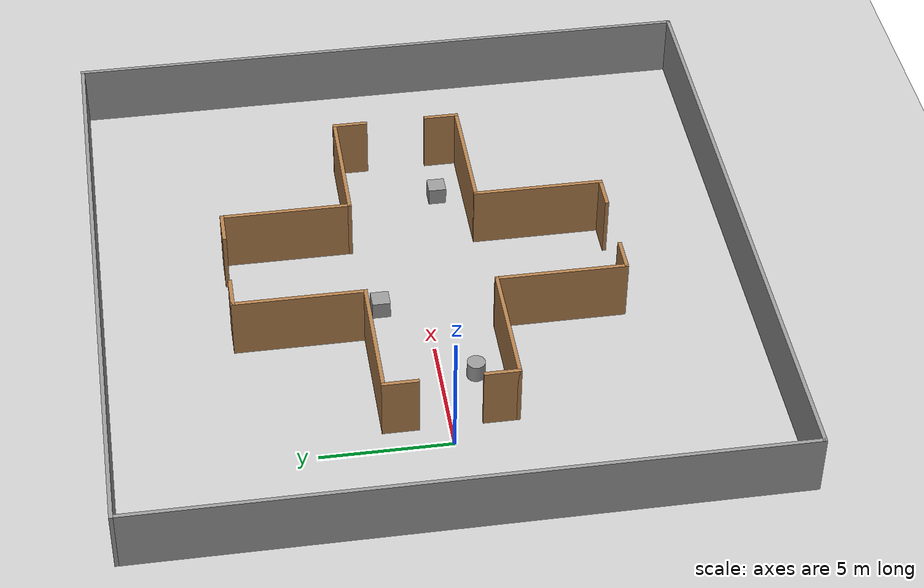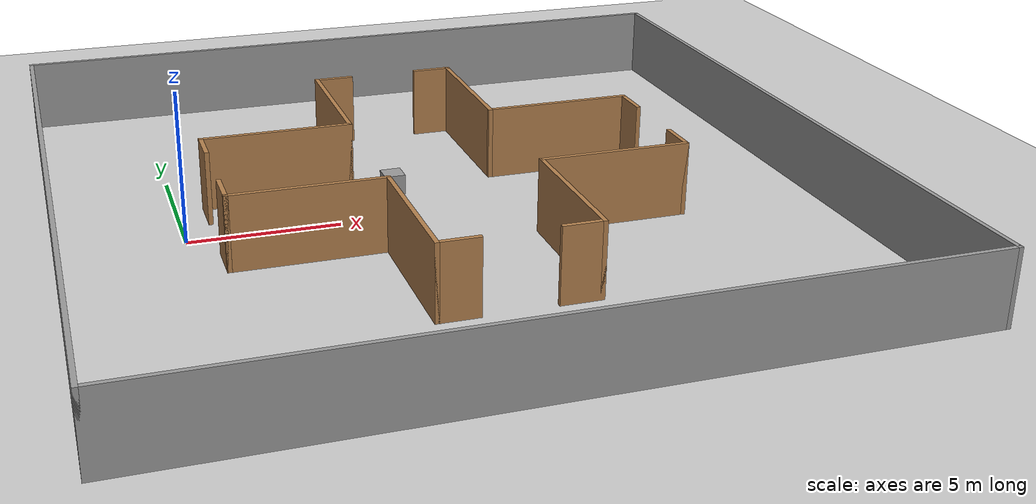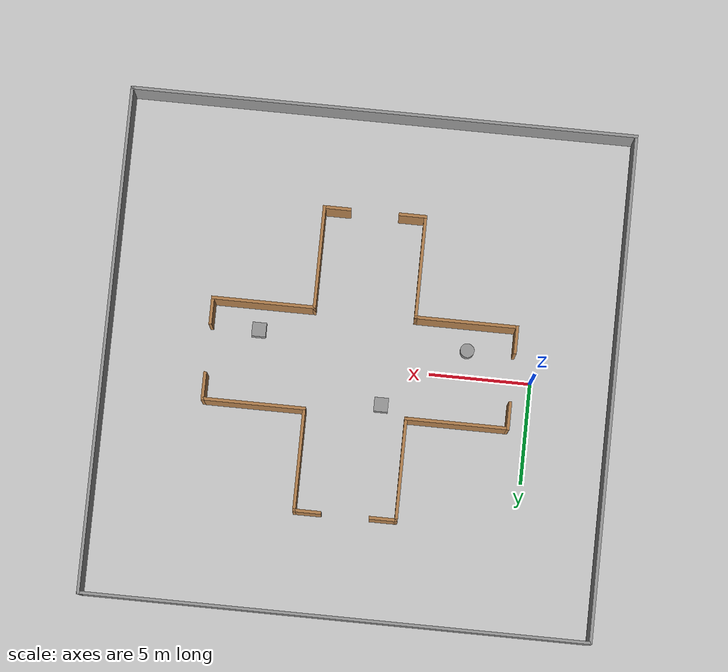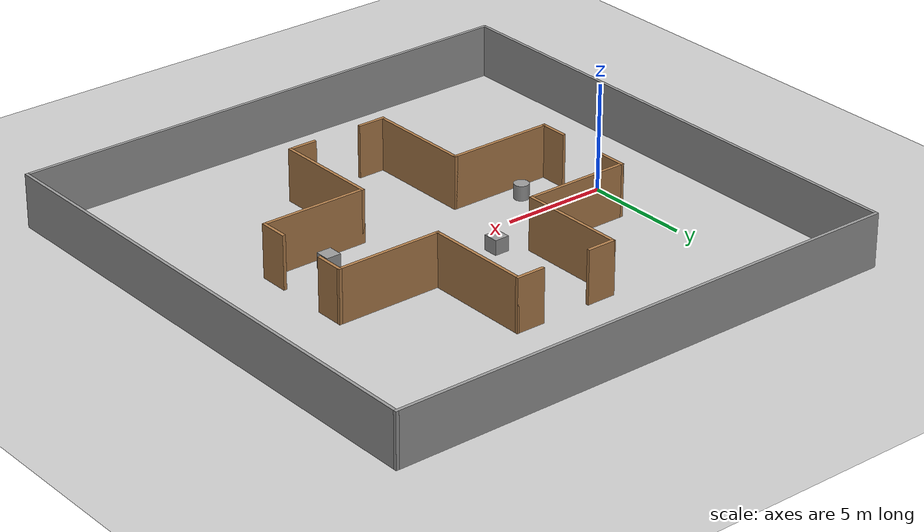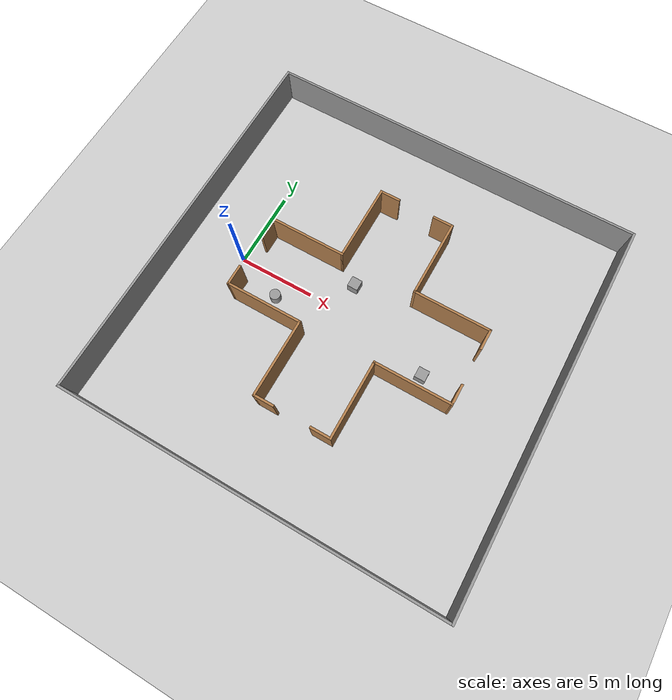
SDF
<sdf version="1.7">
 <world name="default">
  <light name="sun" type="directional">
   <pose>0 0 10 0 -0 0</pose>
   <diffuse>0.8 0.8 0.8 1</diffuse>
   <specular>0.2 0.2 0.2 1</specular>
   <attenuation>
    <range>1000</range>
    <constant>0.9</constant>
    <linear>0.01</linear>
    <quadratic>0.001</quadratic>
   </attenuation>
   <direction>-0.5 0.1 -0.9</direction>
   <spot><inner_angle>0</inner_angle><outer_angle>0</outer_angle><falloff>0</falloff></spot>
  </light>
  <model name="ground_plane">
   <static>1</static>
   <link name="link">
    <collision name="collision">
     <geometry><plane><normal>0 0 1</normal><size>100 100</size></plane></geometry>
     <surface><friction><ode><mu>100</mu><mu2>50</mu2></ode></friction></surface>
    </collision>
    <visual name="visual">
     <cast_shadows>0</cast_shadows>
     <geometry><plane><normal>0 0 1</normal><size>100 100</size></plane></geometry>
     <material>
      <script><uri>file://media/materials/scripts/gazebo.material</uri><name>Gazebo/Grey</name></script>
     </material>
    </visual>
   </link>
  </model>
  <gravity>0 0 -9.8</gravity>
  <magnetic_field>6e-06 2.3e-05 -4.2e-05</magnetic_field>
  <atmosphere type="adiabatic"/>
  <physics type="ode">
   <max_step_size>0.001</max_step_size>
   <real_time_factor>1</real_time_factor>
   <real_time_update_rate>1000</real_time_update_rate>
  </physics>
  <scene><ambient>0.4 0.4 0.4 1</ambient><background>0.7 0.7 0.7 1</background><shadows>1</shadows></scene>
  <spherical_coordinates>
   <surface_model>EARTH_WGS84</surface_model>
   <latitude_deg>0</latitude_deg>
   <longitude_deg>0</longitude_deg>
   <elevation>0</elevation>
   <heading_deg>0</heading_deg>
  </spherical_coordinates>
  <model name="Untitled">
   <pose>8.5 0 0 0 -0 0</pose>
   <link name="Wall_5">
    <collision name="Wall_5_Collision">
     <geometry><box><size>25.15 0.15 2.5</size></box></geometry>
     <pose>0 0 1.25 0 -0 0</pose>
    </collision>
    <visual name="Wall_5_Visual">
     <pose>0 0 1.25 0 -0 0</pose>
     <geometry><box><size>25.15 0.15 2.5</size></box></geometry>
     <material>
      <script><uri>file://media/materials/scripts/gazebo.material</uri><name>Gazebo/Grey</name></script>
      <ambient>1 1 1 1</ambient>
     </material>
     <meta><layer>0</layer></meta>
    </visual>
    <pose>-12.5 0 0 0 -0 -1.5708</pose>
   </link>
   <link name="Wall_6">
    <collision name="Wall_6_Collision">
     <geometry><box><size>25.15 0.15 2.5</size></box></geometry>
     <pose>0 0 1.25 0 -0 0</pose>
    </collision>
    <visual name="Wall_6_Visual">
     <pose>0 0 1.25 0 -0 0</pose>
     <geometry><box><size>25.15 0.15 2.5</size></box></geometry>
     <material>
      <script><uri>file://media/materials/scripts/gazebo.material</uri><name>Gazebo/Grey</name></script>
      <ambient>1 1 1 1</ambient>
     </material>
     <meta><layer>0</layer></meta>
    </visual>
    <pose>0 -12.5 0 0 -0 0</pose>
   </link>
   <link name="Wall_7">
    <collision name="Wall_7_Collision">
     <geometry><box><size>25.15 0.15 2.5</size></box></geometry>
     <pose>0 0 1.25 0 -0 0</pose>
    </collision>
    <visual name="Wall_7_Visual">
     <pose>0 0 1.25 0 -0 0</pose>
     <geometry><box><size>25.15 0.15 2.5</size></box></geometry>
     <material>
      <script><uri>file://media/materials/scripts/gazebo.material</uri><name>Gazebo/Grey</name></script>
      <ambient>1 1 1 1</ambient>
     </material>
     <meta><layer>0</layer></meta>
    </visual>
    <pose>12.5 0 0 0 -0 1.5708</pose>
   </link>
   <link name="Wall_8">
    <collision name="Wall_8_Collision">
     <geometry><box><size>25.15 0.15 2.5</size></box></geometry>
     <pose>0 0 1.25 0 -0 0</pose>
    </collision>
    <visual name="Wall_8_Visual">
     <pose>0 0 1.25 0 -0 0</pose>
     <geometry><box><size>25.15 0.15 2.5</size></box></geometry>
     <material>
      <script><uri>file://media/materials/scripts/gazebo.material</uri><name>Gazebo/Grey</name></script>
      <ambient>1 1 1 1</ambient>
     </material>
     <meta><layer>0</layer></meta>
    </visual>
    <pose>0 12.5 0 0 -0 3.14159</pose>
   </link>
   <static>1</static>
  </model>
  <model name="my_room">
   <pose>8 -0 0 0 -0 0</pose>
   <link name="Wall_0">
    <collision name="Wall_0_Collision">
     <geometry><box><size>1.4 0.15 2.5</size></box></geometry>
     <pose>0 0 1.25 0 -0 0</pose>
    </collision>
    <visual name="Wall_0_Visual">
     <pose>0 0 1.25 0 -0 0</pose>
     <geometry><box><size>1.4 0.15 2.5</size></box></geometry>
     <material>
      <script><uri>file://media/materials/scripts/gazebo.material</uri><name>Gazebo/Wood</name></script>
      <ambient>1 1 1 1</ambient>
     </material>
     <meta><layer>0</layer></meta>
    </visual>
    <pose>-7.0375 1.875 0 0 -0 1.5708</pose>
   </link>
   <link name="Wall_14">
    <collision name="Wall_14_Collision">
     <geometry><box><size>5.15 0.15 2.5</size></box></geometry>
     <pose>0 0 1.25 0 -0 0</pose>
    </collision>
    <visual name="Wall_14_Visual">
     <pose>0 0 1.25 0 -0 0</pose>
     <geometry><box><size>5.15 0.15 2.5</size></box></geometry>
     <material>
      <script><uri>file://media/materials/scripts/gazebo.material</uri><name>Gazebo/Wood</name></script>
      <ambient>1 1 1 1</ambient>
     </material>
     <meta><layer>0</layer></meta>
    </visual>
    <pose>-4.5375 2.5 0 0 -0 0</pose>
   </link>
   <link name="Wall_15">
    <collision name="Wall_15_Collision">
     <geometry><box><size>5.15 0.15 2.5</size></box></geometry>
     <pose>0 0 1.25 0 -0 0</pose>
    </collision>
    <visual name="Wall_15_Visual">
     <pose>0 0 1.25 0 -0 0</pose>
     <geometry><box><size>5.15 0.15 2.5</size></box></geometry>
     <material>
      <script><uri>file://media/materials/scripts/gazebo.material</uri><name>Gazebo/Wood</name></script>
      <ambient>1 1 1 1</ambient>
     </material>
     <meta><layer>0</layer></meta>
    </visual>
    <pose>-2.0375 5 0 0 -0 1.5708</pose>
   </link>
   <link name="Wall_16">
    <collision name="Wall_16_Collision">
     <geometry><box><size>1.4 0.15 2.5</size></box></geometry>
     <pose>0 0 1.25 0 -0 0</pose>
    </collision>
    <visual name="Wall_16_Visual">
     <pose>0 0 1.25 0 -0 0</pose>
     <geometry><box><size>1.4 0.15 2.5</size></box></geometry>
     <material>
      <script><uri>file://media/materials/scripts/gazebo.material</uri><name>Gazebo/Wood</name></script>
      <ambient>1 1 1 1</ambient>
     </material>
     <meta><layer>0</layer></meta>
    </visual>
    <pose>-1.4125 7.5 0 0 -0 0</pose>
   </link>
   <link name="Wall_19">
    <collision name="Wall_19_Collision">
     <geometry><box><size>0.15 0.15 2.5</size></box></geometry>
     <pose>0 0 1.25 0 -0 0</pose>
    </collision>
    <visual name="Wall_19_Visual">
     <pose>0 0 1.25 0 -0 0</pose>
     <geometry><box><size>0.15 0.15 2.5</size></box></geometry>
     <material>
      <script><uri>file://media/materials/scripts/gazebo.material</uri><name>Gazebo/Wood</name></script>
      <ambient>1 1 1 1</ambient>
     </material>
     <meta><layer>0</layer></meta>
    </visual>
    <pose>-7.0375 -2.5 0 0 -0 0</pose>
   </link>
   <link name="Wall_21">
    <collision name="Wall_21_Collision">
     <geometry><box><size>5.15 0.15 2.5</size></box></geometry>
     <pose>0 0 1.25 0 -0 0</pose>
    </collision>
    <visual name="Wall_21_Visual">
     <pose>0 0 1.25 0 -0 0</pose>
     <geometry><box><size>5.15 0.15 2.5</size></box></geometry>
     <material>
      <script><uri>file://media/materials/scripts/gazebo.material</uri><name>Gazebo/Wood</name></script>
      <ambient>1 1 1 1</ambient>
     </material>
     <meta><layer>0</layer></meta>
    </visual>
    <pose>-4.5375 -2.5 0 0 -0 0</pose>
   </link>
   <link name="Wall_22">
    <collision name="Wall_22_Collision">
     <geometry><box><size>5.15 0.15 2.5</size></box></geometry>
     <pose>0 0 1.25 0 -0 0</pose>
    </collision>
    <visual name="Wall_22_Visual">
     <pose>0 0 1.25 0 -0 0</pose>
     <geometry><box><size>5.15 0.15 2.5</size></box></geometry>
     <material>
      <script><uri>file://media/materials/scripts/gazebo.material</uri><name>Gazebo/Wood</name></script>
      <ambient>1 1 1 1</ambient>
     </material>
     <meta><layer>0</layer></meta>
    </visual>
    <pose>-2.0375 -5 0 0 -0 -1.5708</pose>
   </link>
   <link name="Wall_23">
    <collision name="Wall_23_Collision">
     <geometry><box><size>1.4 0.15 2.5</size></box></geometry>
     <pose>0 0 1.25 0 -0 0</pose>
    </collision>
    <visual name="Wall_23_Visual">
     <pose>0 0 1.25 0 -0 0</pose>
     <geometry><box><size>1.4 0.15 2.5</size></box></geometry>
     <material>
      <script><uri>file://media/materials/scripts/gazebo.material</uri><name>Gazebo/Wood</name></script>
      <ambient>1 1 1 1</ambient>
     </material>
     <meta><layer>0</layer></meta>
    </visual>
    <pose>-1.4125 -7.5 0 0 -0 0</pose>
   </link>
   <link name="Wall_25">
    <collision name="Wall_25_Collision">
     <geometry><box><size>1.4 0.15 2.5</size></box></geometry>
     <pose>0 0 1.25 0 -0 0</pose>
    </collision>
    <visual name="Wall_25_Visual">
     <pose>0 0 1.25 0 -0 0</pose>
     <geometry><box><size>1.4 0.15 2.5</size></box></geometry>
     <material>
      <script><uri>file://media/materials/scripts/gazebo.material</uri><name>Gazebo/Wood</name></script>
      <ambient>1 1 1 1</ambient>
     </material>
     <meta><layer>0</layer></meta>
    </visual>
    <pose>2.3375 -7.5 0 0 -0 0</pose>
   </link>
   <link name="Wall_26">
    <collision name="Wall_26_Collision">
     <geometry><box><size>5.15 0.15 2.5</size></box></geometry>
     <pose>0 0 1.25 0 -0 0</pose>
    </collision>
    <visual name="Wall_26_Visual">
     <pose>0 0 1.25 0 -0 0</pose>
     <geometry><box><size>5.15 0.15 2.5</size></box></geometry>
     <material>
      <script><uri>file://media/materials/scripts/gazebo.material</uri><name>Gazebo/Wood</name></script>
      <ambient>1 1 1 1</ambient>
     </material>
     <meta><layer>0</layer></meta>
    </visual>
    <pose>2.9625 -5 0 0 -0 1.5708</pose>
   </link>
   <link name="Wall_27">
    <collision name="Wall_27_Collision">
     <geometry><box><size>5.15 0.15 2.5</size></box></geometry>
     <pose>0 0 1.25 0 -0 0</pose>
    </collision>
    <visual name="Wall_27_Visual">
     <pose>0 0 1.25 0 -0 0</pose>
     <geometry><box><size>5.15 0.15 2.5</size></box></geometry>
     <material>
      <script><uri>file://media/materials/scripts/gazebo.material</uri><name>Gazebo/Wood</name></script>
      <ambient>1 1 1 1</ambient>
     </material>
     <meta><layer>0</layer></meta>
    </visual>
    <pose>5.4625 -2.5 0 0 -0 0</pose>
   </link>
   <link name="Wall_28">
    <collision name="Wall_28_Collision">
     <geometry><box><size>1.4 0.15 2.5</size></box></geometry>
     <pose>0 0 1.25 0 -0 0</pose>
    </collision>
    <visual name="Wall_28_Visual">
     <pose>0 0 1.25 0 -0 0</pose>
     <geometry><box><size>1.4 0.15 2.5</size></box></geometry>
     <material>
      <script><uri>file://media/materials/scripts/gazebo.material</uri><name>Gazebo/Wood</name></script>
      <ambient>1 1 1 1</ambient>
     </material>
     <meta><layer>0</layer></meta>
    </visual>
    <pose>7.9625 -1.875 0 0 -0 1.5708</pose>
   </link>
   <link name="Wall_30">
    <collision name="Wall_30_Collision">
     <geometry><box><size>1.4 0.15 2.5</size></box></geometry>
     <pose>0 0 1.25 0 -0 0</pose>
    </collision>
    <visual name="Wall_30_Visual">
     <pose>0 0 1.25 0 -0 0</pose>
     <geometry><box><size>1.4 0.15 2.5</size></box></geometry>
     <material>
      <script><uri>file://media/materials/scripts/gazebo.material</uri><name>Gazebo/Wood</name></script>
      <ambient>1 1 1 1</ambient>
     </material>
     <meta><layer>0</layer></meta>
    </visual>
    <pose>7.9625 1.875 0 0 -0 1.5708</pose>
   </link>
   <link name="Wall_31">
    <collision name="Wall_31_Collision">
     <geometry><box><size>5.15 0.15 2.5</size></box></geometry>
     <pose>0 0 1.25 0 -0 0</pose>
    </collision>
    <visual name="Wall_31_Visual">
     <pose>0 0 1.25 0 -0 0</pose>
     <geometry><box><size>5.15 0.15 2.5</size></box></geometry>
     <material>
      <script><uri>file://media/materials/scripts/gazebo.material</uri><name>Gazebo/Wood</name></script>
      <ambient>1 1 1 1</ambient>
     </material>
     <meta><layer>0</layer></meta>
    </visual>
    <pose>5.4625 2.5 0 0 -0 3.14159</pose>
   </link>
   <link name="Wall_32">
    <collision name="Wall_32_Collision">
     <geometry><box><size>5.15 0.15 2.5</size></box></geometry>
     <pose>0 0 1.25 0 -0 0</pose>
    </collision>
    <visual name="Wall_32_Visual">
     <pose>0 0 1.25 0 -0 0</pose>
     <geometry><box><size>5.15 0.15 2.5</size></box></geometry>
     <material>
      <script><uri>file://media/materials/scripts/gazebo.material</uri><name>Gazebo/Wood</name></script>
      <ambient>1 1 1 1</ambient>
     </material>
     <meta><layer>0</layer></meta>
    </visual>
    <pose>2.9625 5 0 0 -0 1.5708</pose>
   </link>
   <link name="Wall_33">
    <collision name="Wall_33_Collision">
     <geometry><box><size>1.4 0.15 2.5</size></box></geometry>
     <pose>0 0 1.25 0 -0 0</pose>
    </collision>
    <visual name="Wall_33_Visual">
     <pose>0 0 1.25 0 -0 0</pose>
     <geometry><box><size>1.4 0.15 2.5</size></box></geometry>
     <material>
      <script><uri>file://media/materials/scripts/gazebo.material</uri><name>Gazebo/Wood</name></script>
      <ambient>1 1 1 1</ambient>
     </material>
     <meta><layer>0</layer></meta>
    </visual>
    <pose>2.3375 7.5 0 0 -0 3.14159</pose>
   </link>
   <link name="Wall_35">
    <collision name="Wall_35_Collision">
     <geometry><box><size>1.4 0.15 2.5</size></box></geometry>
     <pose>0 0 1.25 0 -0 0</pose>
    </collision>
    <visual name="Wall_35_Visual">
     <pose>0 0 1.25 0 -0 0</pose>
     <geometry><box><size>1.4 0.15 2.5</size></box></geometry>
     <material>
      <script><uri>file://media/materials/scripts/gazebo.material</uri><name>Gazebo/Wood</name></script>
      <ambient>1 1 1 1</ambient>
     </material>
     <meta><layer>0</layer></meta>
    </visual>
    <pose>-7.0375 -1.875 0 0 -0 1.5708</pose>
   </link>
   <static>1</static>
  </model>
  <model name="unit_cylinder">
   <pose>3.26487 -1.29637 0.499997 3e-06 4e-06 -0</pose>
   <link name="link">
    <inertial>
     <mass>1</mass>
     <inertia><ixx>0.145833</ixx><ixy>0</ixy><ixz>0</ixz><iyy>0.145833</iyy><iyz>0</iyz><izz>0.125</izz></inertia>
    </inertial>
    <collision name="collision">
     <geometry><cylinder><radius>0.35</radius><length>0.7</length></cylinder></geometry>
    </collision>
    <visual name="visual">
     <geometry><cylinder><radius>0.35</radius><length>0.7</length></cylinder></geometry>
     <material>
      <script><name>Gazebo/Grey</name><uri>file://media/materials/scripts/gazebo.material</uri></script>
     </material>
    </visual>
   </link>
  </model>
  <model name="unit_box">
   <pose>13.6188 -1.33471 0.499995 -1e-05 -0 0</pose>
   <link name="link">
    <inertial>
     <mass>1</mass>
     <inertia>
      <ixx>0.166667</ixx>
      <ixy>0</ixy>
      <ixz>0</ixz>
      <iyy>0.166667</iyy>
      <iyz>0</iyz>
      <izz>0.166667</izz>
     </inertia>
    </inertial>
    <collision name="collision"><geometry><box><size>0.7 0.7 0.7</size></box></geometry></collision>
    <visual name="visual">
     <geometry><box><size>0.7 0.7 0.7</size></box></geometry>
     <material>
      <script><name>Gazebo/Grey</name><uri>file://media/materials/scripts/gazebo.material</uri></script>
     </material>
    </visual>
   </link>
  </model>
  <model name="unit_box_0">
   <pose>7.2447 1.79199 0.5 0 -0 0</pose>
   <link name="link">
    <inertial>
     <mass>1</mass>
     <inertia>
      <ixx>0.166667</ixx>
      <ixy>0</ixy>
      <ixz>0</ixz>
      <iyy>0.166667</iyy>
      <iyz>0</iyz>
      <izz>0.166667</izz>
     </inertia>
    </inertial>
    <collision name="collision"><geometry><box><size>0.7 0.7 0.7</size></box></geometry></collision>
    <visual name="visual">
     <geometry><box><size>0.7 0.7 0.7</size></box></geometry>
     <material>
      <script><name>Gazebo/Grey</name><uri>file://media/materials/scripts/gazebo.material</uri></script>
     </material>
    </visual>
   </link>
  </model>
 </world>
</sdf>
